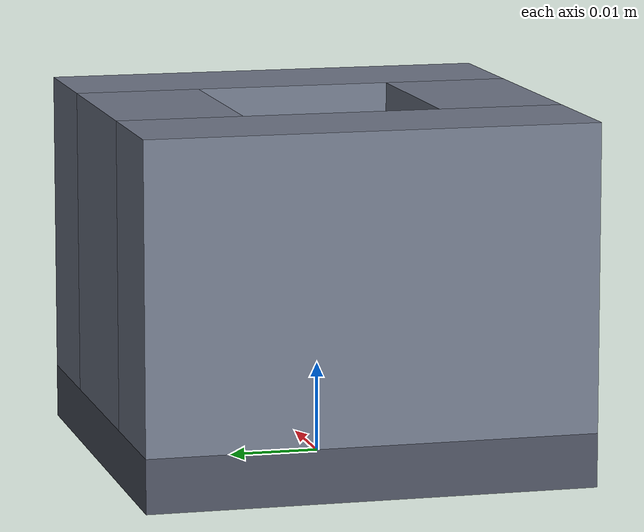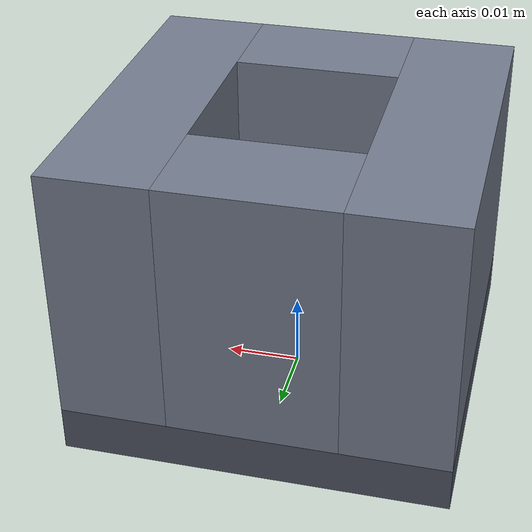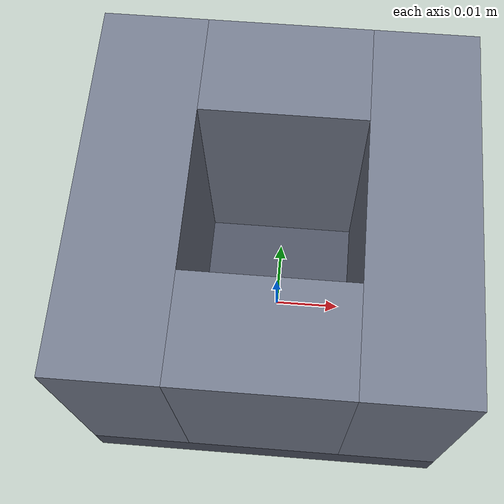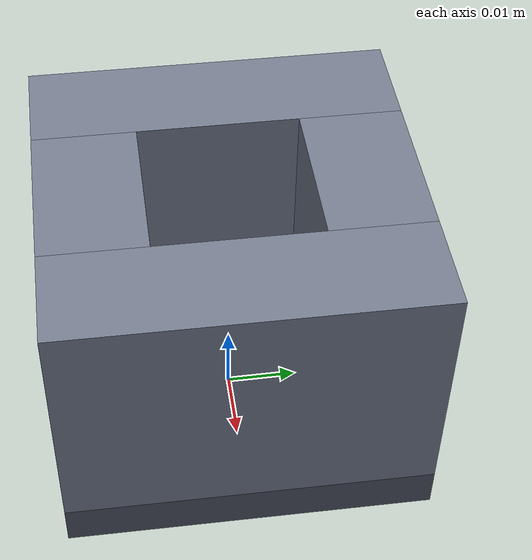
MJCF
<mujoco model="box_with_hole">
  <worldbody>
    <body name="box" pos="0 0 0">
      <geom name="box_floor"   type="box" pos="0 0 0.003"   size="0.025 0.025 0.003" rgba="0.30 0.32 0.38 1"/>
      <geom name="box_wall_px" type="box" pos="0.018 0 0.023"  size="0.007 0.025 0.017" rgba="0.45 0.48 0.55 1"/>
      <geom name="box_wall_nx" type="box" pos="-0.018 0 0.023" size="0.007 0.025 0.017" rgba="0.45 0.48 0.55 1"/>
      <geom name="box_wall_py" type="box" pos="0 0.018 0.023"  size="0.011 0.007 0.017" rgba="0.45 0.48 0.55 1"/>
      <geom name="box_wall_ny" type="box" pos="0 -0.018 0.023" size="0.011 0.007 0.017" rgba="0.45 0.48 0.55 1"/>
    </body>
  </worldbody>
</mujoco>
